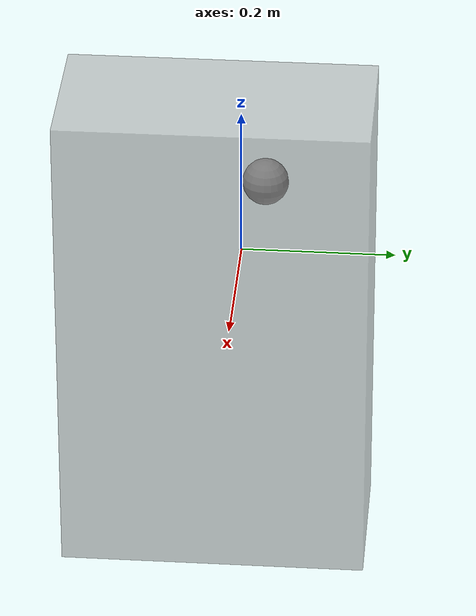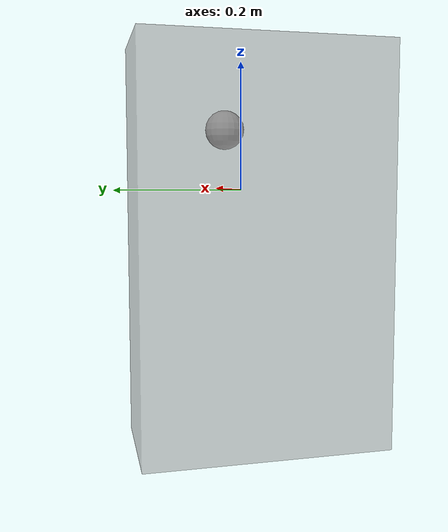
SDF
<?xml version='1.0'?>
<sdf version='1.7'>
  <model name='human_body'>
    <link name='body'>
      <inertial>
        <mass>1</mass>
        <inertia>
          <ixx>0.166667</ixx>
          <ixy>0</ixy>
          <ixz>0</ixz>
          <iyy>0.166667</iyy>
          <iyz>0</iyz>
          <izz>0.166667</izz>
        </inertia>
        <pose>0 0 0 0 -0 0</pose>
      </inertial>
      <pose>0.0175 -0.03 -0.0925 0 -0 0</pose>
      <gravity>1</gravity>
      <self_collide>0</self_collide>
      <kinematic>0</kinematic>
      <enable_wind>0</enable_wind>
      <visual name='visual'>
        <pose>0 0 0 0 -0 0</pose>
        <geometry>
          <box>
            <size>0.2 0.4 0.65</size>
          </box>
        </geometry>
        <material>
          <lighting>1</lighting>
          <script>
            <uri>file://media/materials/scripts/gazebo.material</uri>
            <name>Gazebo/Grey</name>
          </script>
          <shader type='pixel'>
            <normal_map>__default__</normal_map>
          </shader>
          <ambient>0.3 0.3 0.3 1</ambient>
          <diffuse>0.7 0.7 0.7 1</diffuse>
          <specular>0.01 0.01 0.01 1</specular>
          <emissive>0 0 0 1</emissive>
        </material>
        <transparency>0.5</transparency>
        <cast_shadows>1</cast_shadows>
      </visual>
      <collision name='collision'>
        <laser_retro>0</laser_retro>
        <max_contacts>10</max_contacts>
        <pose>0 0 0 0 -0 0</pose>
        <geometry>
          <box>
            <size>0.2 0.4 0.65</size>
          </box>
        </geometry>
        <surface>
          <friction>
            <ode>
              <mu>1</mu>
              <mu2>1</mu2>
              <fdir1>0 0 0</fdir1>
              <slip1>0</slip1>
              <slip2>0</slip2>
            </ode>
            <torsional>
              <coefficient>1</coefficient>
              <patch_radius>0</patch_radius>
              <surface_radius>0</surface_radius>
              <use_patch_radius>1</use_patch_radius>
              <ode>
                <slip>0</slip>
              </ode>
            </torsional>
          </friction>
          <bounce>
            <restitution_coefficient>0</restitution_coefficient>
            <threshold>1e+06</threshold>
          </bounce>
          <contact>
            <collide_without_contact>0</collide_without_contact>
            <collide_without_contact_bitmask>1</collide_without_contact_bitmask>
            <collide_bitmask>1</collide_bitmask>
            <ode>
              <soft_cfm>0</soft_cfm>
              <soft_erp>0.2</soft_erp>
              <kp>1e+13</kp>
              <kd>1</kd>
              <max_vel>0.01</max_vel>
              <min_depth>0</min_depth>
            </ode>
            <bullet>
              <split_impulse>1</split_impulse>
              <split_impulse_penetration_threshold>-0.01</split_impulse_penetration_threshold>
              <soft_cfm>0</soft_cfm>
              <soft_erp>0.2</soft_erp>
              <kp>1e+13</kp>
              <kd>1</kd>
            </bullet>
          </contact>
        </surface>
      </collision>
    </link>
    <link name='heart'>
      <inertial>
        <mass>0.3</mass>
        <inertia>
          <ixx>0.000108</ixx>
          <ixy>0</ixy>
          <ixz>0</ixz>
          <iyy>0.000108</iyy>
          <iyz>0</iyz>
          <izz>0.000108</izz>
        </inertia>
        <pose>0 0 0 0 -0 0</pose>
      </inertial>
      <pose>-0.0175 0.03 0.0925 0 -0 0</pose>
      <gravity>1</gravity>
      <self_collide>0</self_collide>
      <kinematic>0</kinematic>
      <enable_wind>0</enable_wind>
      <visual name='visual'>
        <pose>0 0 0 0 -0 0</pose>
        <geometry>
          <sphere>
            <radius>0.03</radius>
          </sphere>
        </geometry>
        <material>
          <lighting>1</lighting>
          <script>
            <uri>file://media/materials/scripts/gazebo.material</uri>
            <name>Gazebo/Grey</name>
          </script>
          <shader type='pixel'>
            <normal_map>__default__</normal_map>
          </shader>
          <ambient>0.3 0.3 0.3 1</ambient>
          <diffuse>0.7 0.7 0.7 1</diffuse>
          <specular>0.01 0.01 0.01 1</specular>
          <emissive>0 0 0 1</emissive>
        </material>
        <transparency>0</transparency>
        <cast_shadows>1</cast_shadows>
      </visual>
      <collision name='collision'>
        <laser_retro>0</laser_retro>
        <max_contacts>10</max_contacts>
        <pose>0 0 0 0 -0 0</pose>
        <geometry>
          <sphere>
            <radius>0.03</radius>
          </sphere>
        </geometry>
        <surface>
          <friction>
            <ode>
              <mu>1</mu>
              <mu2>1</mu2>
              <fdir1>0 0 0</fdir1>
              <slip1>0</slip1>
              <slip2>0</slip2>
            </ode>
            <torsional>
              <coefficient>1</coefficient>
              <patch_radius>0</patch_radius>
              <surface_radius>0</surface_radius>
              <use_patch_radius>1</use_patch_radius>
              <ode>
                <slip>0</slip>
              </ode>
            </torsional>
          </friction>
          <bounce>
            <restitution_coefficient>0</restitution_coefficient>
            <threshold>1e+06</threshold>
          </bounce>
          <contact>
            <collide_without_contact>0</collide_without_contact>
            <collide_without_contact_bitmask>1</collide_without_contact_bitmask>
            <collide_bitmask>1</collide_bitmask>
            <ode>
              <soft_cfm>0</soft_cfm>
              <soft_erp>0.2</soft_erp>
              <kp>1e+13</kp>
              <kd>1</kd>
              <max_vel>0.01</max_vel>
              <min_depth>0</min_depth>
            </ode>
            <bullet>
              <split_impulse>1</split_impulse>
              <split_impulse_penetration_threshold>-0.01</split_impulse_penetration_threshold>
              <soft_cfm>0</soft_cfm>
              <soft_erp>0.2</soft_erp>
              <kp>1e+13</kp>
              <kd>1</kd>
            </bullet>
          </contact>
        </surface>
      </collision>
    </link>
    <joint name='link_1_JOINT_1' type='fixed'>
      <parent>body</parent>
      <child>heart</child>
      <pose>0 0 0 0 -0 0</pose>
      <physics>
        <ode>
          <limit>
            <cfm>0</cfm>
            <erp>0.2</erp>
          </limit>
          <suspension>
            <cfm>0</cfm>
            <erp>0.2</erp>
          </suspension>
        </ode>
      </physics>
    </joint>
    <static>0</static>
    <allow_auto_disable>1</allow_auto_disable>
  </model>
</sdf>
